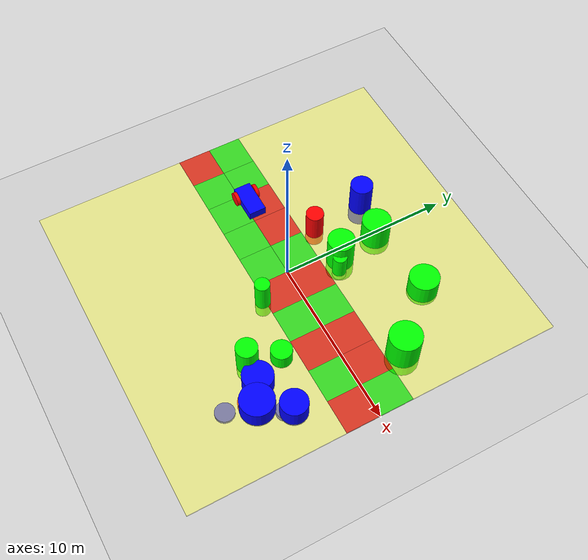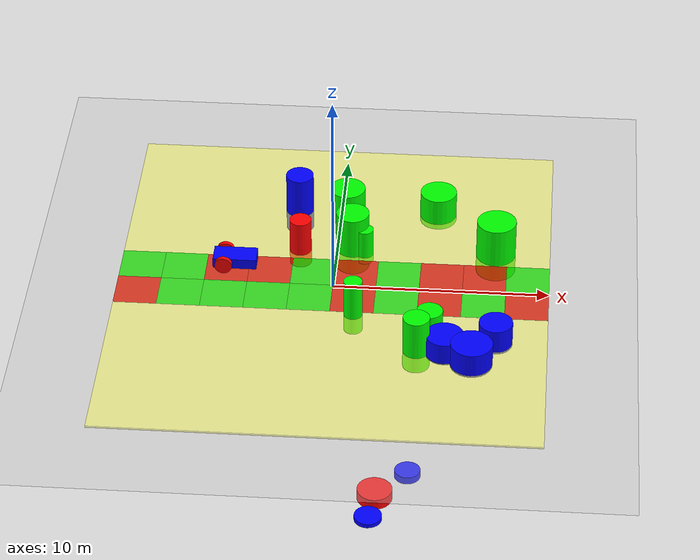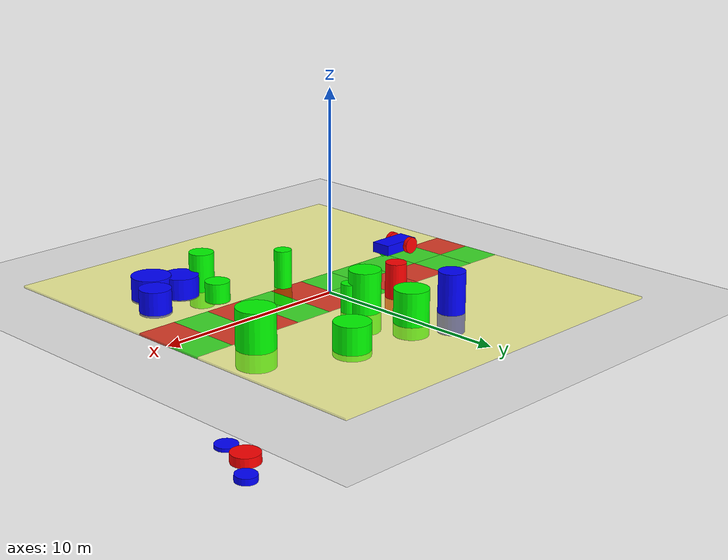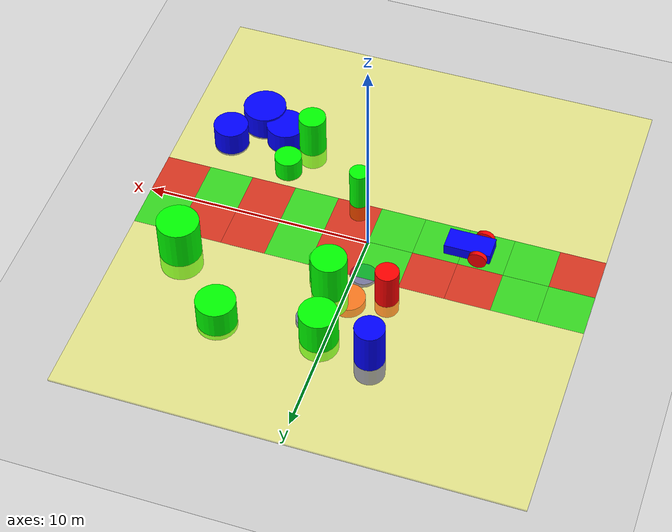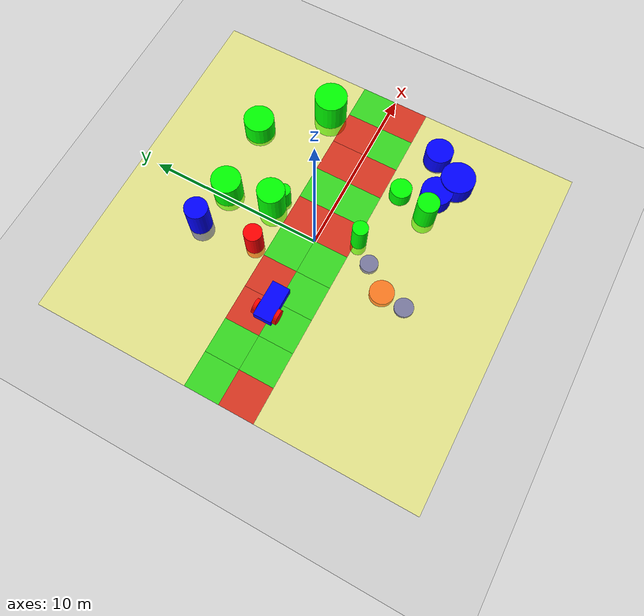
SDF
<?xml version="1.0" ?>
<sdf version='1.9'>
  <world name='car_world'>
    <physics name='1ms' type='ignored'>
      <max_step_size>1</max_step_size>
      <real_time_factor>1</real_time_factor>
      <real_time_update_rate>1000</real_time_update_rate>
    </physics>
    <plugin name='ignition::gazebo::systems::Physics' filename='libignition-gazebo-physics-system.so'/>
    <plugin name='ignition::gazebo::systems::UserCommands' filename='libignition-gazebo-user-commands-system.so'/>
    <plugin name='ignition::gazebo::systems::SceneBroadcaster' filename='libignition-gazebo-scene-broadcaster-system.so'/>
    <gravity>0 0 -9.8</gravity>
    <magnetic_field>6e-06 2.3e-05 -4.2e-05</magnetic_field>
    <atmosphere type='adiabatic'/>
    <scene>
      <ambient>0.4 0.4 0.4 1</ambient>
      <background>0.7 0.7 0.7 1</background>
      <shadows>true</shadows>
    </scene>
    <model name='ground_plane'>
      <static>true</static>
      <link name='link'>
        <collision name='collision'>
          <geometry>
            <plane>
              <normal>0 0 1</normal>
              <size>1 1</size>
            </plane>
          </geometry>
          <surface>
            <friction>
              <ode/>
            </friction>
            <bounce/>
            <contact/>
          </surface>
        </collision>
        <visual name='visual'>
          <geometry>
            <plane>
              <normal>0 0 1</normal>
              <size>100 100</size>
            </plane>
          </geometry>
          <material>
            <ambient>0.8 0.8 0.8 1</ambient>
            <diffuse>0.8 0.8 0.8 1</diffuse>
            <specular>0.8 0.8 0.8 1</specular>
          </material>
        </visual>
        <pose>0 0 0 0 -0 0</pose>
        <inertial>
          <pose>0 0 0 0 -0 0</pose>
          <mass>1</mass>
          <inertia>
            <ixx>1</ixx>
            <ixy>0</ixy>
            <ixz>0</ixz>
            <iyy>1</iyy>
            <iyz>0</iyz>
            <izz>1</izz>
          </inertia>
        </inertial>
        <enable_wind>false</enable_wind>
      </link>
      <pose>0 0 0 0 -0 0</pose>
      <self_collide>false</self_collide>
    </model>
    <model name='plank_left'>
      <pose>2e-06 6.50002 0.016227 0.000139 1.8e-05 0</pose>
      <link name='link_1'>
        <pose>0 0 0 0 -0 0</pose>
        <inertial>
          <mass>54.000100000000003</mass>
          <inertia>
            <ixx>364.54599999999999</ixx>
            <ixy>0</ixy>
            <ixz>0</ixz>
            <iyy>1800.0599999999999</iyy>
            <iyz>0</iyz>
            <izz>2164.5100000000002</izz>
          </inertia>
          <pose>0 0 0 0 -0 0</pose>
        </inertial>
        <visual name='visual'>
          <geometry>
            <box>
              <size>20 9 0.1</size>
            </box>
          </geometry>
          <material>
            <ambient>1 1 0.3 0.5</ambient>
            <diffuse>1 1 0.3 0.5</diffuse>
            <specular>1 1 0.3 0.5</specular>
          </material>
        </visual>
        <collision name='collision'>
          <geometry>
            <box>
              <size>20 9 0.1</size>
            </box>
          </geometry>
          <surface>
            <friction>
              <ode>
                <mu>1</mu>
                <mu2>1</mu2>
              </ode>
            </friction>
            <bounce/>
            <contact/>
          </surface>
        </collision>
        <enable_wind>false</enable_wind>
      </link>
      <static>false</static>
      <allow_auto_disable>true</allow_auto_disable>
      <self_collide>false</self_collide>
    </model>
    <model name='plank_right'>
      <pose>0 -6.50082 0.016562 -8.7e-05 4.7e-05 -6e-06</pose>
      <link name='link_1'>
        <pose>0 0 0 0 -0 0</pose>
        <inertial>
          <mass>54.000100000000003</mass>
          <inertia>
            <ixx>364.54599999999999</ixx>
            <ixy>0</ixy>
            <ixz>0</ixz>
            <iyy>1800.0599999999999</iyy>
            <iyz>0</iyz>
            <izz>2164.5100000000002</izz>
          </inertia>
          <pose>0 0 0 0 -0 0</pose>
        </inertial>
        <visual name='visual'>
          <geometry>
            <box>
              <size>20 9 0.1</size>
            </box>
          </geometry>
          <material>
            <ambient>1 1 0.3 0.5</ambient>
            <diffuse>1 1 0.3 0.5</diffuse>
            <specular>1 1 0.3 0.5</specular>
          </material>
        </visual>
        <collision name='collision'>
          <geometry>
            <box>
              <size>20 9 0.1</size>
            </box>
          </geometry>
          <surface>
            <friction>
              <ode>
                <mu>1</mu>
                <mu2>1</mu2>
              </ode>
            </friction>
            <bounce/>
            <contact/>
          </surface>
        </collision>
        <enable_wind>false</enable_wind>
      </link>
      <static>false</static>
      <allow_auto_disable>true</allow_auto_disable>
      <self_collide>false</self_collide>
    </model>
    <model name='Blauer_Blitz' canonical_link='chassis'>
      <pose>-5.00011 -0 1 -0.000245 0.000738 -1e-05</pose>
      <link name='chassis'>
        <pose>0.5 0 0.4 0 -0 0</pose>
        <inertial>
          <mass>1.14395</mass>
          <inertia>
            <ixx>0.126164</ixx>
            <ixy>0</ixy>
            <ixz>0</ixz>
            <iyy>0.41651899999999997</iyy>
            <iyz>0</iyz>
            <izz>0.481014</izz>
          </inertia>
          <pose>0 0 0 0 -0 0</pose>
        </inertial>
        <visual name='visual'>
          <geometry>
            <box>
              <size>2 1 0.5</size>
            </box>
          </geometry>
          <material>
            <ambient>0 0 1 1</ambient>
            <diffuse>0 0 1 1</diffuse>
            <specular>0 0 1 1</specular>
          </material>
        </visual>
        <collision name='collision'>
          <geometry>
            <box>
              <size>2 1 0.5</size>
            </box>
          </geometry>
          <surface>
            <friction>
              <ode/>
            </friction>
            <bounce/>
            <contact/>
          </surface>
        </collision>
        <enable_wind>false</enable_wind>
      </link>
      <link name='left_wheel'>
        <pose>-0 0.6 0.4 -1.5707 -0 -0</pose>
        <inertial>
          <mass>2</mass>
          <inertia>
            <ixx>0.14583299999999999</ixx>
            <ixy>0</ixy>
            <ixz>0</ixz>
            <iyy>0.14583299999999999</iyy>
            <iyz>0</iyz>
            <izz>0.125</izz>
          </inertia>
          <pose>0 0 0 0 -0 0</pose>
        </inertial>
        <visual name='visual'>
          <geometry>
            <cylinder>
              <radius>0.40000000000000002</radius>
              <length>0.20000000000000001</length>
            </cylinder>
          </geometry>
          <material>
            <ambient>1 0 0 1</ambient>
            <diffuse>1 0 0 1</diffuse>
            <specular>1 0 0 1</specular>
          </material>
        </visual>
        <collision name='collision'>
          <geometry>
            <cylinder>
              <radius>0.40000000000000002</radius>
              <length>0.20000000000000001</length>
            </cylinder>
          </geometry>
          <surface>
            <friction>
              <ode/>
            </friction>
            <bounce/>
            <contact/>
          </surface>
        </collision>
        <enable_wind>false</enable_wind>
      </link>
      <link name='right_wheel'>
        <pose>-0 -0.6 0.4 -1.5707 -0 -0</pose>
        <inertial>
          <mass>1</mass>
          <inertia>
            <ixx>0.14583299999999999</ixx>
            <ixy>0</ixy>
            <ixz>0</ixz>
            <iyy>0.14583299999999999</iyy>
            <iyz>0</iyz>
            <izz>0.125</izz>
          </inertia>
          <pose>0 0 0 0 -0 0</pose>
        </inertial>
        <visual name='visual'>
          <geometry>
            <cylinder>
              <radius>0.40000000000000002</radius>
              <length>0.20000000000000001</length>
            </cylinder>
          </geometry>
          <material>
            <ambient>1 0 0 1</ambient>
            <diffuse>1 0 0 1</diffuse>
            <specular>1 0 0 1</specular>
          </material>
        </visual>
        <collision name='collision'>
          <geometry>
            <cylinder>
              <radius>0.40000000000000002</radius>
              <length>0.20000000000000001</length>
            </cylinder>
          </geometry>
          <surface>
            <friction>
              <ode/>
            </friction>
            <bounce/>
            <contact/>
          </surface>
        </collision>
        <enable_wind>false</enable_wind>
      </link>
      <frame name='caster_frame' attached_to='chassis'>
        <pose>0.8 0 -0.2 0 0 0</pose>
      </frame>
      <link name='caster'>
        <pose>1.3 0 0.2 0.000245 -0.000738 9e-06</pose>
        <inertial>
          <mass>1</mass>
          <inertia>
            <ixx>0.10000000000000001</ixx>
            <ixy>0</ixy>
            <ixz>0</ixz>
            <iyy>0.10000000000000001</iyy>
            <iyz>0</iyz>
            <izz>0.10000000000000001</izz>
          </inertia>
          <pose>0 0 0 0 -0 0</pose>
        </inertial>
        <visual name='visual'>
          <geometry>
            <sphere>
              <radius>0.20000000000000001</radius>
            </sphere>
          </geometry>
          <material>
            <ambient>0 1 0 1</ambient>
            <diffuse>0 1 0 1</diffuse>
            <specular>0 1 0 1</specular>
          </material>
        </visual>
        <collision name='collision'>
          <geometry>
            <sphere>
              <radius>0.20000000000000001</radius>
            </sphere>
          </geometry>
          <surface>
            <friction>
              <ode/>
            </friction>
            <bounce/>
            <contact/>
          </surface>
        </collision>
        <enable_wind>false</enable_wind>
      </link>
      <joint name='left_wheel_joint' type='revolute'>
        <pose>0 0 0 0 -0 0</pose>
        <parent>chassis</parent>
        <child>left_wheel</child>
        <axis>
          <xyz>0 9.6e-05 1</xyz>
          <limit>
            <lower>-1.7976900000000001e+308</lower>
            <upper>1.7976900000000001e+308</upper>
            <effort>inf</effort>
            <velocity>inf</velocity>
            <stiffness>100000000</stiffness>
            <dissipation>1</dissipation>
          </limit>
          <dynamics>
            <spring_reference>0</spring_reference>
            <spring_stiffness>0</spring_stiffness>
            <damping>0</damping>
            <friction>0</friction>
          </dynamics>
        </axis>
      </joint>
      <joint name='right_wheel_joint' type='revolute'>
        <pose>0 0 0 0 -0 0</pose>
        <parent>chassis</parent>
        <child>right_wheel</child>
        <axis>
          <xyz>0 9.6e-05 1</xyz>
          <limit>
            <lower>-1.7976900000000001e+308</lower>
            <upper>1.7976900000000001e+308</upper>
            <effort>inf</effort>
            <velocity>inf</velocity>
            <stiffness>100000000</stiffness>
            <dissipation>1</dissipation>
          </limit>
          <dynamics>
            <spring_reference>0</spring_reference>
            <spring_stiffness>0</spring_stiffness>
            <damping>0</damping>
            <friction>0</friction>
          </dynamics>
        </axis>
      </joint>
      <joint name='caster_wheel' type='ball'>
        <parent>chassis</parent>
        <child>caster</child>
        <pose>0 0 0 0 -0 0</pose>
      </joint>
      <plugin name='ignition::gazebo::systems::DiffDrive' filename='ignition-gazebo-diff-drive-system'>
        <left_joint>left_wheel_joint</left_joint>
        <right_joint>right_wheel_joint</right_joint>
        <wheel_separation>1.2</wheel_separation>
        <wheel_radius>0.4</wheel_radius>
        <odom_publish_frequency>1</odom_publish_frequency>
        <topic>cmd_vel</topic>
      </plugin>
      <static>false</static>
      <self_collide>false</self_collide>
    </model>
    <model name='cyl_0'>
      <pose>4.60002 6.01996 0.584421 8.3e-05 6.1e-05 2.2e-05</pose>
      <link name='cylinder_link'>
        <inertial>
          <inertia>
            <ixx>0.14580000000000001</ixx>
            <ixy>0</ixy>
            <ixz>0</ixz>
            <iyy>0.14580000000000001</iyy>
            <iyz>0</iyz>
            <izz>0.125</izz>
          </inertia>
          <mass>1</mass>
          <pose>0 0 0 0 -0 0</pose>
        </inertial>
        <collision name='cylinder_collision'>
          <geometry>
            <cylinder>
              <radius>0.85999999999999999</radius>
              <length>1.5700000000000001</length>
            </cylinder>
          </geometry>
          <surface>
            <friction>
              <ode/>
            </friction>
            <bounce/>
            <contact/>
          </surface>
        </collision>
        <visual name='cylinder_visual'>
          <geometry>
            <cylinder>
              <radius>0.85999999999999999</radius>
              <length>1.5700000000000001</length>
            </cylinder>
          </geometry>
          <material>
            <ambient>0 1 0 1</ambient>
            <diffuse>0 1 0 1</diffuse>
            <specular>0 1 0 1</specular>
          </material>
        </visual>
        <pose>0 0 0 0 -0 0</pose>
        <enable_wind>false</enable_wind>
      </link>
      <static>false</static>
      <self_collide>false</self_collide>
    </model>
    <model name='cyl_1'>
      <pose>4.63079 -2.87058 0.535152 -0.000482 0.001892 0.000149</pose>
      <link name='cylinder_link'>
        <inertial>
          <inertia>
            <ixx>0.14580000000000001</ixx>
            <ixy>0</ixy>
            <ixz>0</ixz>
            <iyy>0.14580000000000001</iyy>
            <iyz>0</iyz>
            <izz>0.125</izz>
          </inertia>
          <mass>1</mass>
          <pose>0 0 0 0 -0 0</pose>
        </inertial>
        <collision name='cylinder_collision'>
          <geometry>
            <cylinder>
              <radius>0.59999999999999998</radius>
              <length>0.97999999999999998</length>
            </cylinder>
          </geometry>
          <surface>
            <friction>
              <ode/>
            </friction>
            <bounce/>
            <contact/>
          </surface>
        </collision>
        <visual name='cylinder_visual'>
          <geometry>
            <cylinder>
              <radius>0.59999999999999998</radius>
              <length>0.97999999999999998</length>
            </cylinder>
          </geometry>
          <material>
            <ambient>0 1 0 1</ambient>
            <diffuse>0 1 0 1</diffuse>
            <specular>0 1 0 1</specular>
          </material>
        </visual>
        <pose>0 0 0 0 -0 0</pose>
        <enable_wind>false</enable_wind>
      </link>
      <static>false</static>
      <self_collide>false</self_collide>
    </model>
    <model name='cyl_2'>
      <pose>2.24 -3.81 -9.23213 -0 0 0</pose>
      <link name='cylinder_link'>
        <inertial>
          <inertia>
            <ixx>0.14580000000000001</ixx>
            <ixy>0</ixy>
            <ixz>0</ixz>
            <iyy>0.14580000000000001</iyy>
            <iyz>0</iyz>
            <izz>0.125</izz>
          </inertia>
          <mass>1</mass>
          <pose>0 0 0 0 -0 0</pose>
        </inertial>
        <collision name='cylinder_collision'>
          <geometry>
            <cylinder>
              <radius>0.83999999999999997</radius>
              <length>0.56000000000000005</length>
            </cylinder>
          </geometry>
          <surface>
            <friction>
              <ode/>
            </friction>
            <bounce/>
            <contact/>
          </surface>
        </collision>
        <visual name='cylinder_visual'>
          <geometry>
            <cylinder>
              <radius>0.83999999999999997</radius>
              <length>0.56000000000000005</length>
            </cylinder>
          </geometry>
          <material>
            <ambient>1 0 0 1</ambient>
            <diffuse>1 0 0 1</diffuse>
            <specular>1 0 0 1</specular>
          </material>
        </visual>
        <pose>0 0 0 0 -0 0</pose>
        <enable_wind>false</enable_wind>
      </link>
      <static>false</static>
      <self_collide>false</self_collide>
    </model>
    <model name='cyl_3'>
      <pose>1.3115 2.60841 0.588737 0.000703 0.000568 -6.3e-05</pose>
      <link name='cylinder_link'>
        <inertial>
          <inertia>
            <ixx>0.14580000000000001</ixx>
            <ixy>0</ixy>
            <ixz>0</ixz>
            <iyy>0.14580000000000001</iyy>
            <iyz>0</iyz>
            <izz>0.125</izz>
          </inertia>
          <mass>1</mass>
          <pose>0 0 0 0 -0 0</pose>
        </inertial>
        <collision name='cylinder_collision'>
          <geometry>
            <cylinder>
              <radius>0.40000000000000002</radius>
              <length>1.74</length>
            </cylinder>
          </geometry>
          <surface>
            <friction>
              <ode/>
            </friction>
            <bounce/>
            <contact/>
          </surface>
        </collision>
        <visual name='cylinder_visual'>
          <geometry>
            <cylinder>
              <radius>0.40000000000000002</radius>
              <length>1.74</length>
            </cylinder>
          </geometry>
          <material>
            <ambient>0 1 0 1</ambient>
            <diffuse>0 1 0 1</diffuse>
            <specular>0 1 0 1</specular>
          </material>
        </visual>
        <pose>0 0 0 0 -0 0</pose>
        <enable_wind>false</enable_wind>
      </link>
      <static>false</static>
      <self_collide>false</self_collide>
    </model>
    <model name='cyl_4'>
      <pose>0.300024 5.55995 0.58481 8.7e-05 5.2e-05 1.6e-05</pose>
      <link name='cylinder_link'>
        <inertial>
          <inertia>
            <ixx>0.14580000000000001</ixx>
            <ixy>0</ixy>
            <ixz>0</ixz>
            <iyy>0.14580000000000001</iyy>
            <iyz>0</iyz>
            <izz>0.125</izz>
          </inertia>
          <mass>1</mass>
          <pose>0 0 0 0 -0 0</pose>
        </inertial>
        <collision name='cylinder_collision'>
          <geometry>
            <cylinder>
              <radius>0.82999999999999996</radius>
              <length>2.23</length>
            </cylinder>
          </geometry>
          <surface>
            <friction>
              <ode/>
            </friction>
            <bounce/>
            <contact/>
          </surface>
        </collision>
        <visual name='cylinder_visual'>
          <geometry>
            <cylinder>
              <radius>0.82999999999999996</radius>
              <length>2.23</length>
            </cylinder>
          </geometry>
          <material>
            <ambient>0 1 0 1</ambient>
            <diffuse>0 1 0 1</diffuse>
            <specular>0 1 0 1</specular>
          </material>
        </visual>
        <pose>0 0 0 0 -0 0</pose>
        <enable_wind>false</enable_wind>
      </link>
      <static>false</static>
      <self_collide>false</self_collide>
    </model>
    <model name='cyl_5'>
      <pose>-1.72002 2.70995 0.587508 0.000106 -8.8e-05 -2.6e-05</pose>
      <link name='cylinder_link'>
        <inertial>
          <inertia>
            <ixx>0.14580000000000001</ixx>
            <ixy>0</ixy>
            <ixz>0</ixz>
            <iyy>0.14580000000000001</iyy>
            <iyz>0</iyz>
            <izz>0.125</izz>
          </inertia>
          <mass>1</mass>
          <pose>0 0 0 0 -0 0</pose>
        </inertial>
        <collision name='cylinder_collision'>
          <geometry>
            <cylinder>
              <radius>0.51000000000000001</radius>
              <length>2.3900000000000001</length>
            </cylinder>
          </geometry>
          <surface>
            <friction>
              <ode/>
            </friction>
            <bounce/>
            <contact/>
          </surface>
        </collision>
        <visual name='cylinder_visual'>
          <geometry>
            <cylinder>
              <radius>0.51000000000000001</radius>
              <length>2.3900000000000001</length>
            </cylinder>
          </geometry>
          <material>
            <ambient>1 0 0 1</ambient>
            <diffuse>1 0 0 1</diffuse>
            <specular>1 0 0 1</specular>
          </material>
        </visual>
        <pose>0 0 0 0 -0 0</pose>
        <enable_wind>false</enable_wind>
      </link>
      <static>false</static>
      <self_collide>false</self_collide>
    </model>
    <model name='cyl_6'>
      <pose>3.69648 -2.15263 -9.28027 -0.025013 -0.010582 -0.008154</pose>
      <link name='cylinder_link'>
        <inertial>
          <inertia>
            <ixx>0.14580000000000001</ixx>
            <ixy>0</ixy>
            <ixz>0</ixz>
            <iyy>0.14580000000000001</iyy>
            <iyz>0</iyz>
            <izz>0.125</izz>
          </inertia>
          <mass>1</mass>
          <pose>0 0 0 0 -0 0</pose>
        </inertial>
        <collision name='cylinder_collision'>
          <geometry>
            <cylinder>
              <radius>0.62</radius>
              <length>0.38</length>
            </cylinder>
          </geometry>
          <surface>
            <friction>
              <ode/>
            </friction>
            <bounce/>
            <contact/>
          </surface>
        </collision>
        <visual name='cylinder_visual'>
          <geometry>
            <cylinder>
              <radius>0.62</radius>
              <length>0.38</length>
            </cylinder>
          </geometry>
          <material>
            <ambient>0 0 1 1</ambient>
            <diffuse>0 0 1 1</diffuse>
            <specular>0 0 1 1</specular>
          </material>
        </visual>
        <pose>0 0 0 0 -0 0</pose>
        <enable_wind>false</enable_wind>
      </link>
      <static>false</static>
      <self_collide>false</self_collide>
    </model>
    <model name='cyl_7'>
      <pose>2.04 -5.52 -9.23014 0 -0 0</pose>
      <link name='cylinder_link'>
        <inertial>
          <inertia>
            <ixx>0.14580000000000001</ixx>
            <ixy>0</ixy>
            <ixz>0</ixz>
            <iyy>0.14580000000000001</iyy>
            <iyz>0</iyz>
            <izz>0.125</izz>
          </inertia>
          <mass>1</mass>
          <pose>0 0 0 0 -0 0</pose>
        </inertial>
        <collision name='cylinder_collision'>
          <geometry>
            <cylinder>
              <radius>0.66000000000000003</radius>
              <length>0.22</length>
            </cylinder>
          </geometry>
          <surface>
            <friction>
              <ode/>
            </friction>
            <bounce/>
            <contact/>
          </surface>
        </collision>
        <visual name='cylinder_visual'>
          <geometry>
            <cylinder>
              <radius>0.66000000000000003</radius>
              <length>0.22</length>
            </cylinder>
          </geometry>
          <material>
            <ambient>0 0 1 1</ambient>
            <diffuse>0 0 1 1</diffuse>
            <specular>0 0 1 1</specular>
          </material>
        </visual>
        <pose>0 0 0 0 -0 0</pose>
        <enable_wind>false</enable_wind>
      </link>
      <static>false</static>
      <self_collide>false</self_collide>
    </model>
    <model name='cyl_8'>
      <pose>7.45004 2.9506 0.583882 -0.001263 8.5e-05 2.1e-05</pose>
      <link name='cylinder_link'>
        <inertial>
          <inertia>
            <ixx>0.14580000000000001</ixx>
            <ixy>0</ixy>
            <ixz>0</ixz>
            <iyy>0.14580000000000001</iyy>
            <iyz>0</iyz>
            <izz>0.125</izz>
          </inertia>
          <mass>1</mass>
          <pose>0 0 0 0 -0 0</pose>
        </inertial>
        <collision name='cylinder_collision'>
          <geometry>
            <cylinder>
              <radius>0.92000000000000004</radius>
              <length>2.7599999999999998</length>
            </cylinder>
          </geometry>
          <surface>
            <friction>
              <ode/>
            </friction>
            <bounce/>
            <contact/>
          </surface>
        </collision>
        <visual name='cylinder_visual'>
          <geometry>
            <cylinder>
              <radius>0.92000000000000004</radius>
              <length>2.7599999999999998</length>
            </cylinder>
          </geometry>
          <material>
            <ambient>0 1 0 1</ambient>
            <diffuse>0 1 0 1</diffuse>
            <specular>0 1 0 1</specular>
          </material>
        </visual>
        <pose>0 0 0 0 -0 0</pose>
        <enable_wind>false</enable_wind>
      </link>
      <static>false</static>
      <self_collide>false</self_collide>
    </model>
    <model name='cyl_9'>
      <pose>6.61686 -5.35217 0.57986 0.000467 0.001269 5.6e-05</pose>
      <link name='cylinder_link'>
        <inertial>
          <inertia>
            <ixx>0.14580000000000001</ixx>
            <ixy>0</ixy>
            <ixz>0</ixz>
            <iyy>0.14580000000000001</iyy>
            <iyz>0</iyz>
            <izz>0.125</izz>
          </inertia>
          <mass>1</mass>
          <pose>0 0 0 0 -0 0</pose>
        </inertial>
        <collision name='cylinder_collision'>
          <geometry>
            <cylinder>
              <radius>0.95999999999999996</radius>
              <length>1.1799999999999999</length>
            </cylinder>
          </geometry>
          <surface>
            <friction>
              <ode/>
            </friction>
            <bounce/>
            <contact/>
          </surface>
        </collision>
        <visual name='cylinder_visual'>
          <geometry>
            <cylinder>
              <radius>0.95999999999999996</radius>
              <length>1.1799999999999999</length>
            </cylinder>
          </geometry>
          <material>
            <ambient>0 0 1 1</ambient>
            <diffuse>0 0 1 1</diffuse>
            <specular>0 0 1 1</specular>
          </material>
        </visual>
        <pose>0 0 0 0 -0 0</pose>
        <enable_wind>false</enable_wind>
      </link>
      <static>false</static>
      <self_collide>false</self_collide>
    </model>
    <model name='cyl_10'>
      <pose>-2.02001 5.94996 0.586806 8e-05 -3.4e-05 -3e-06</pose>
      <link name='cylinder_link'>
        <inertial>
          <inertia>
            <ixx>0.14580000000000001</ixx>
            <ixy>0</ixy>
            <ixz>0</ixz>
            <iyy>0.14580000000000001</iyy>
            <iyz>0</iyz>
            <izz>0.125</izz>
          </inertia>
          <mass>1</mass>
          <pose>0 0 0 0 -0 0</pose>
        </inertial>
        <collision name='cylinder_collision'>
          <geometry>
            <cylinder>
              <radius>0.65000000000000002</radius>
              <length>2.96</length>
            </cylinder>
          </geometry>
          <surface>
            <friction>
              <ode/>
            </friction>
            <bounce/>
            <contact/>
          </surface>
        </collision>
        <visual name='cylinder_visual'>
          <geometry>
            <cylinder>
              <radius>0.65000000000000002</radius>
              <length>2.96</length>
            </cylinder>
          </geometry>
          <material>
            <ambient>0 0 1 1</ambient>
            <diffuse>0 0 1 1</diffuse>
            <specular>0 0 1 1</specular>
          </material>
        </visual>
        <pose>0 0 0 0 -0 0</pose>
        <enable_wind>false</enable_wind>
      </link>
      <static>false</static>
      <self_collide>false</self_collide>
    </model>
    <model name='cyl_11'>
      <pose>5.38085 -4.66839 0.553964 -0.000818 -0.000598 9.3e-05</pose>
      <link name='cylinder_link'>
        <inertial>
          <inertia>
            <ixx>0.14580000000000001</ixx>
            <ixy>0</ixy>
            <ixz>0</ixz>
            <iyy>0.14580000000000001</iyy>
            <iyz>0</iyz>
            <izz>0.125</izz>
          </inertia>
          <mass>1</mass>
          <pose>0 0 0 0 -0 0</pose>
        </inertial>
        <collision name='cylinder_collision'>
          <geometry>
            <cylinder>
              <radius>0.87</radius>
              <length>1.0600000000000001</length>
            </cylinder>
          </geometry>
          <surface>
            <friction>
              <ode/>
            </friction>
            <bounce/>
            <contact/>
          </surface>
        </collision>
        <visual name='cylinder_visual'>
          <geometry>
            <cylinder>
              <radius>0.87</radius>
              <length>1.0600000000000001</length>
            </cylinder>
          </geometry>
          <material>
            <ambient>0 0 1 1</ambient>
            <diffuse>0 0 1 1</diffuse>
            <specular>0 0 1 1</specular>
          </material>
        </visual>
        <pose>0 0 0 0 -0 0</pose>
        <enable_wind>false</enable_wind>
      </link>
      <static>false</static>
      <self_collide>false</self_collide>
    </model>
    <model name='cyl_12'>
      <pose>1.09011 -2.13026 0.572621 1.4e-05 0.000411 0.000235</pose>
      <link name='cylinder_link'>
        <inertial>
          <inertia>
            <ixx>0.14580000000000001</ixx>
            <ixy>0</ixy>
            <ixz>0</ixz>
            <iyy>0.14580000000000001</iyy>
            <iyz>0</iyz>
            <izz>0.125</izz>
          </inertia>
          <mass>1</mass>
          <pose>0 0 0 0 -0 0</pose>
        </inertial>
        <collision name='cylinder_collision'>
          <geometry>
            <cylinder>
              <radius>0.42999999999999999</radius>
              <length>2.7200000000000002</length>
            </cylinder>
          </geometry>
          <surface>
            <friction>
              <ode/>
            </friction>
            <bounce/>
            <contact/>
          </surface>
        </collision>
        <visual name='cylinder_visual'>
          <geometry>
            <cylinder>
              <radius>0.42999999999999999</radius>
              <length>2.7200000000000002</length>
            </cylinder>
          </geometry>
          <material>
            <ambient>0 1 0 1</ambient>
            <diffuse>0 1 0 1</diffuse>
            <specular>0 1 0 1</specular>
          </material>
        </visual>
        <pose>0 0 0 0 -0 0</pose>
        <enable_wind>false</enable_wind>
      </link>
      <static>false</static>
      <self_collide>false</self_collide>
    </model>
    <model name='cyl_13'>
      <pose>7.65005 -3.76079 0.5849 -0.000157 5.7e-05 3e-06</pose>
      <link name='cylinder_link'>
        <inertial>
          <inertia>
            <ixx>0.14580000000000001</ixx>
            <ixy>0</ixy>
            <ixz>0</ixz>
            <iyy>0.14580000000000001</iyy>
            <iyz>0</iyz>
            <izz>0.125</izz>
          </inertia>
          <mass>1</mass>
          <pose>0 0 0 0 -0 0</pose>
        </inertial>
        <collision name='cylinder_collision'>
          <geometry>
            <cylinder>
              <radius>0.77000000000000002</radius>
              <length>1.22</length>
            </cylinder>
          </geometry>
          <surface>
            <friction>
              <ode/>
            </friction>
            <bounce/>
            <contact/>
          </surface>
        </collision>
        <visual name='cylinder_visual'>
          <geometry>
            <cylinder>
              <radius>0.77000000000000002</radius>
              <length>1.22</length>
            </cylinder>
          </geometry>
          <material>
            <ambient>0 0 1 1</ambient>
            <diffuse>0 0 1 1</diffuse>
            <specular>0 0 1 1</specular>
          </material>
        </visual>
        <pose>0 0 0 0 -0 0</pose>
        <enable_wind>false</enable_wind>
      </link>
      <static>false</static>
      <self_collide>false</self_collide>
    </model>
    <model name='cyl_14'>
      <pose>0.712593 3.00327 0.584965 0.000316 0.000444 6.8e-05</pose>
      <link name='cylinder_link'>
        <inertial>
          <inertia>
            <ixx>0.14580000000000001</ixx>
            <ixy>0</ixy>
            <ixz>0</ixz>
            <iyy>0.14580000000000001</iyy>
            <iyz>0</iyz>
            <izz>0.125</izz>
          </inertia>
          <mass>1</mass>
          <pose>0 0 0 0 -0 0</pose>
        </inertial>
        <collision name='cylinder_collision'>
          <geometry>
            <cylinder>
              <radius>0.77000000000000002</radius>
              <length>2.9900000000000002</length>
            </cylinder>
          </geometry>
          <surface>
            <friction>
              <ode/>
            </friction>
            <bounce/>
            <contact/>
          </surface>
        </collision>
        <visual name='cylinder_visual'>
          <geometry>
            <cylinder>
              <radius>0.77000000000000002</radius>
              <length>2.9900000000000002</length>
            </cylinder>
          </geometry>
          <material>
            <ambient>0 1 0 1</ambient>
            <diffuse>0 1 0 1</diffuse>
            <specular>0 1 0 1</specular>
          </material>
        </visual>
        <pose>0 0 0 0 -0 0</pose>
        <enable_wind>false</enable_wind>
      </link>
      <static>false</static>
      <self_collide>false</self_collide>
    </model>
    <model name='cyl_15'>
      <pose>4.10752 -4.62697 0.588208 0.001675 -0.002884 -0.001654</pose>
      <link name='cylinder_link'>
        <inertial>
          <inertia>
            <ixx>0.14580000000000001</ixx>
            <ixy>0</ixy>
            <ixz>0</ixz>
            <iyy>0.14580000000000001</iyy>
            <iyz>0</iyz>
            <izz>0.125</izz>
          </inertia>
          <mass>1</mass>
          <pose>0 0 0 0 -0 0</pose>
        </inertial>
        <collision name='cylinder_collision'>
          <geometry>
            <cylinder>
              <radius>0.60999999999999999</radius>
              <length>2.6800000000000002</length>
            </cylinder>
          </geometry>
          <surface>
            <friction>
              <ode/>
            </friction>
            <bounce/>
            <contact/>
          </surface>
        </collision>
        <visual name='cylinder_visual'>
          <geometry>
            <cylinder>
              <radius>0.60999999999999999</radius>
              <length>2.6800000000000002</length>
            </cylinder>
          </geometry>
          <material>
            <ambient>0 1 0 1</ambient>
            <diffuse>0 1 0 1</diffuse>
            <specular>0 1 0 1</specular>
          </material>
        </visual>
        <pose>0 0 0 0 -0 0</pose>
        <enable_wind>false</enable_wind>
      </link>
      <static>false</static>
      <self_collide>false</self_collide>
    </model>
    <model name='tile_-5_-1'>
      <pose>-9 -0.999999 0.017402 1e-05 1e-06 0</pose>
      <link name='tile_-5_-1'>
        <pose>0 0 0 0 -0 0</pose>
        <inertial>
          <mass>260.13400000000001</mass>
          <inertia>
            <ixx>86.820899999999995</ixx>
            <ixy>0</ixy>
            <ixz>0</ixz>
            <iyy>86.821299999999994</iyy>
            <iyz>0</iyz>
            <izz>173.423</izz>
          </inertia>
          <pose>0 0 0 0 -0 0</pose>
        </inertial>
        <visual name='visual'>
          <geometry>
            <box>
              <size>2 2 0.1</size>
            </box>
          </geometry>
          <material>
            <ambient>0.9 0.1 0 0.8</ambient>
            <diffuse>0.9 0.1 0 0.8</diffuse>
            <specular>0.9 0.1 0 0.8</specular>
          </material>
        </visual>
        <collision name='collision'>
          <geometry>
            <box>
              <size>2 2 0.1</size>
            </box>
          </geometry>
          <surface>
            <friction>
              <ode>
                <mu>28.999999999999996</mu>
                <mu2>41</mu2>
              </ode>
            </friction>
            <contact/>
            <bounce/>
          </surface>
        </collision>
        <enable_wind>false</enable_wind>
      </link>
      <static>false</static>
      <self_collide>false</self_collide>
    </model>
    <model name='tile_-5_0'>
      <pose>-9 1 0.017404 1e-05 -2e-06 -0</pose>
      <link name='tile_-5_0'>
        <pose>0 0 0 0 -0 0</pose>
        <inertial>
          <mass>260.13400000000001</mass>
          <inertia>
            <ixx>86.820899999999995</ixx>
            <ixy>0</ixy>
            <ixz>0</ixz>
            <iyy>86.821299999999994</iyy>
            <iyz>0</iyz>
            <izz>173.423</izz>
          </inertia>
          <pose>0 0 0 0 -0 0</pose>
        </inertial>
        <visual name='visual'>
          <geometry>
            <box>
              <size>2 2 0.1</size>
            </box>
          </geometry>
          <material>
            <ambient>0.1 0.9 0 0.8</ambient>
            <diffuse>0.1 0.9 0 0.8</diffuse>
            <specular>0.1 0.9 0 0.8</specular>
          </material>
        </visual>
        <collision name='collision'>
          <geometry>
            <box>
              <size>2 2 0.1</size>
            </box>
          </geometry>
          <surface>
            <friction>
              <ode>
                <mu>78</mu>
                <mu2>32</mu2>
              </ode>
            </friction>
            <contact/>
            <bounce/>
          </surface>
        </collision>
        <enable_wind>false</enable_wind>
      </link>
      <static>false</static>
      <self_collide>false</self_collide>
    </model>
    <model name='tile_-4_-1'>
      <pose>-7 -1 0.017402 1e-05 1e-06 -0</pose>
      <link name='tile_-4_-1'>
        <pose>0 0 0 0 -0 0</pose>
        <inertial>
          <mass>260.13400000000001</mass>
          <inertia>
            <ixx>86.820899999999995</ixx>
            <ixy>0</ixy>
            <ixz>0</ixz>
            <iyy>86.821299999999994</iyy>
            <iyz>0</iyz>
            <izz>173.423</izz>
          </inertia>
          <pose>0 0 0 0 -0 0</pose>
        </inertial>
        <visual name='visual'>
          <geometry>
            <box>
              <size>2 2 0.1</size>
            </box>
          </geometry>
          <material>
            <ambient>0.1 0.9 0 0.8</ambient>
            <diffuse>0.1 0.9 0 0.8</diffuse>
            <specular>0.1 0.9 0 0.8</specular>
          </material>
        </visual>
        <collision name='collision'>
          <geometry>
            <box>
              <size>2 2 0.1</size>
            </box>
          </geometry>
          <surface>
            <friction>
              <ode>
                <mu>50</mu>
                <mu2>95</mu2>
              </ode>
            </friction>
            <contact/>
            <bounce/>
          </surface>
        </collision>
        <enable_wind>false</enable_wind>
      </link>
      <static>false</static>
      <self_collide>false</self_collide>
    </model>
    <model name='tile_-4_0'>
      <pose>-7 1 0.017403 1e-05 -2e-06 -0</pose>
      <link name='tile_-4_0'>
        <pose>0 0 0 0 -0 0</pose>
        <inertial>
          <mass>260.13400000000001</mass>
          <inertia>
            <ixx>86.820899999999995</ixx>
            <ixy>0</ixy>
            <ixz>0</ixz>
            <iyy>86.821299999999994</iyy>
            <iyz>0</iyz>
            <izz>173.423</izz>
          </inertia>
          <pose>0 0 0 0 -0 0</pose>
        </inertial>
        <visual name='visual'>
          <geometry>
            <box>
              <size>2 2 0.1</size>
            </box>
          </geometry>
          <material>
            <ambient>0.1 0.9 0 0.8</ambient>
            <diffuse>0.1 0.9 0 0.8</diffuse>
            <specular>0.1 0.9 0 0.8</specular>
          </material>
        </visual>
        <collision name='collision'>
          <geometry>
            <box>
              <size>2 2 0.1</size>
            </box>
          </geometry>
          <surface>
            <friction>
              <ode>
                <mu>71</mu>
                <mu2>86</mu2>
              </ode>
            </friction>
            <contact/>
            <bounce/>
          </surface>
        </collision>
        <enable_wind>false</enable_wind>
      </link>
      <static>false</static>
      <self_collide>false</self_collide>
    </model>
    <model name='tile_-3_-1'>
      <pose>-5 -0.999999 0.017404 1e-05 -2e-06 -0</pose>
      <link name='tile_-3_-1'>
        <pose>0 0 0 0 -0 0</pose>
        <inertial>
          <mass>260.13400000000001</mass>
          <inertia>
            <ixx>86.820899999999995</ixx>
            <ixy>0</ixy>
            <ixz>0</ixz>
            <iyy>86.821299999999994</iyy>
            <iyz>0</iyz>
            <izz>173.423</izz>
          </inertia>
          <pose>0 0 0 0 -0 0</pose>
        </inertial>
        <visual name='visual'>
          <geometry>
            <box>
              <size>2 2 0.1</size>
            </box>
          </geometry>
          <material>
            <ambient>0.1 0.9 0 0.8</ambient>
            <diffuse>0.1 0.9 0 0.8</diffuse>
            <specular>0.1 0.9 0 0.8</specular>
          </material>
        </visual>
        <collision name='collision'>
          <geometry>
            <box>
              <size>2 2 0.1</size>
            </box>
          </geometry>
          <surface>
            <friction>
              <ode>
                <mu>79</mu>
                <mu2>16</mu2>
              </ode>
            </friction>
            <contact/>
            <bounce/>
          </surface>
        </collision>
        <enable_wind>false</enable_wind>
      </link>
      <static>false</static>
      <self_collide>false</self_collide>
    </model>
    <model name='tile_-3_0'>
      <pose>-5 1 0.017403 1e-05 0 0</pose>
      <link name='tile_-3_0'>
        <pose>0 0 0 0 -0 0</pose>
        <inertial>
          <mass>260.13400000000001</mass>
          <inertia>
            <ixx>86.820899999999995</ixx>
            <ixy>0</ixy>
            <ixz>0</ixz>
            <iyy>86.821299999999994</iyy>
            <iyz>0</iyz>
            <izz>173.423</izz>
          </inertia>
          <pose>0 0 0 0 -0 0</pose>
        </inertial>
        <visual name='visual'>
          <geometry>
            <box>
              <size>2 2 0.1</size>
            </box>
          </geometry>
          <material>
            <ambient>0.9 0.1 0 0.8</ambient>
            <diffuse>0.9 0.1 0 0.8</diffuse>
            <specular>0.9 0.1 0 0.8</specular>
          </material>
        </visual>
        <collision name='collision'>
          <geometry>
            <box>
              <size>2 2 0.1</size>
            </box>
          </geometry>
          <surface>
            <friction>
              <ode>
                <mu>0</mu>
                <mu2>14.000000000000002</mu2>
              </ode>
            </friction>
            <contact/>
            <bounce/>
          </surface>
        </collision>
        <enable_wind>false</enable_wind>
      </link>
      <static>false</static>
      <self_collide>false</self_collide>
    </model>
    <model name='tile_-2_-1'>
      <pose>-3 -0.999999 0.017404 1e-05 -5e-06 -0</pose>
      <link name='tile_-2_-1'>
        <pose>0 0 0 0 -0 0</pose>
        <inertial>
          <mass>260.13400000000001</mass>
          <inertia>
            <ixx>86.820899999999995</ixx>
            <ixy>0</ixy>
            <ixz>0</ixz>
            <iyy>86.821299999999994</iyy>
            <iyz>0</iyz>
            <izz>173.423</izz>
          </inertia>
          <pose>0 0 0 0 -0 0</pose>
        </inertial>
        <visual name='visual'>
          <geometry>
            <box>
              <size>2 2 0.1</size>
            </box>
          </geometry>
          <material>
            <ambient>0.1 0.9 0 0.8</ambient>
            <diffuse>0.1 0.9 0 0.8</diffuse>
            <specular>0.1 0.9 0 0.8</specular>
          </material>
        </visual>
        <collision name='collision'>
          <geometry>
            <box>
              <size>2 2 0.1</size>
            </box>
          </geometry>
          <surface>
            <friction>
              <ode>
                <mu>95</mu>
                <mu2>61</mu2>
              </ode>
            </friction>
            <contact/>
            <bounce/>
          </surface>
        </collision>
        <enable_wind>false</enable_wind>
      </link>
      <static>false</static>
      <self_collide>false</self_collide>
    </model>
    <model name='tile_-2_0'>
      <pose>-3 1 0.017403 1e-05 -1e-06 0</pose>
      <link name='tile_-2_0'>
        <pose>0 0 0 0 -0 0</pose>
        <inertial>
          <mass>260.13400000000001</mass>
          <inertia>
            <ixx>86.820899999999995</ixx>
            <ixy>0</ixy>
            <ixz>0</ixz>
            <iyy>86.821299999999994</iyy>
            <iyz>0</iyz>
            <izz>173.423</izz>
          </inertia>
          <pose>0 0 0 0 -0 0</pose>
        </inertial>
        <visual name='visual'>
          <geometry>
            <box>
              <size>2 2 0.1</size>
            </box>
          </geometry>
          <material>
            <ambient>0.9 0.1 0 0.8</ambient>
            <diffuse>0.9 0.1 0 0.8</diffuse>
            <specular>0.9 0.1 0 0.8</specular>
          </material>
        </visual>
        <collision name='collision'>
          <geometry>
            <box>
              <size>2 2 0.1</size>
            </box>
          </geometry>
          <surface>
            <friction>
              <ode>
                <mu>44</mu>
                <mu2>88</mu2>
              </ode>
            </friction>
            <contact/>
            <bounce/>
          </surface>
        </collision>
        <enable_wind>false</enable_wind>
      </link>
      <static>false</static>
      <self_collide>false</self_collide>
    </model>
    <model name='tile_-1_-1'>
      <pose>-1 -0.999999 0.017402 1e-05 -2e-06 0</pose>
      <link name='tile_-1_-1'>
        <pose>0 0 0 0 -0 0</pose>
        <inertial>
          <mass>260.13400000000001</mass>
          <inertia>
            <ixx>86.820899999999995</ixx>
            <ixy>0</ixy>
            <ixz>0</ixz>
            <iyy>86.821299999999994</iyy>
            <iyz>0</iyz>
            <izz>173.423</izz>
          </inertia>
          <pose>0 0 0 0 -0 0</pose>
        </inertial>
        <visual name='visual'>
          <geometry>
            <box>
              <size>2 2 0.1</size>
            </box>
          </geometry>
          <material>
            <ambient>0.1 0.9 0 0.8</ambient>
            <diffuse>0.1 0.9 0 0.8</diffuse>
            <specular>0.1 0.9 0 0.8</specular>
          </material>
        </visual>
        <collision name='collision'>
          <geometry>
            <box>
              <size>2 2 0.1</size>
            </box>
          </geometry>
          <surface>
            <friction>
              <ode>
                <mu>70</mu>
                <mu2>67</mu2>
              </ode>
            </friction>
            <contact/>
            <bounce/>
          </surface>
        </collision>
        <enable_wind>false</enable_wind>
      </link>
      <static>false</static>
      <self_collide>false</self_collide>
    </model>
    <model name='tile_-1_0'>
      <pose>-1 1 0.017403 1e-05 -3e-06 0</pose>
      <link name='tile_-1_0'>
        <pose>0 0 0 0 -0 0</pose>
        <inertial>
          <mass>260.13400000000001</mass>
          <inertia>
            <ixx>86.820899999999995</ixx>
            <ixy>0</ixy>
            <ixz>0</ixz>
            <iyy>86.821299999999994</iyy>
            <iyz>0</iyz>
            <izz>173.423</izz>
          </inertia>
          <pose>0 0 0 0 -0 0</pose>
        </inertial>
        <visual name='visual'>
          <geometry>
            <box>
              <size>2 2 0.1</size>
            </box>
          </geometry>
          <material>
            <ambient>0.1 0.9 0 0.8</ambient>
            <diffuse>0.1 0.9 0 0.8</diffuse>
            <specular>0.1 0.9 0 0.8</specular>
          </material>
        </visual>
        <collision name='collision'>
          <geometry>
            <box>
              <size>2 2 0.1</size>
            </box>
          </geometry>
          <surface>
            <friction>
              <ode>
                <mu>73</mu>
                <mu2>81</mu2>
              </ode>
            </friction>
            <contact/>
            <bounce/>
          </surface>
        </collision>
        <enable_wind>false</enable_wind>
      </link>
      <static>false</static>
      <self_collide>false</self_collide>
    </model>
    <model name='tile_0_-1'>
      <pose>1 -0.999913 0.017406 5e-06 -0 4e-06</pose>
      <link name='tile_0_-1'>
        <pose>0 0 0 0 -0 0</pose>
        <inertial>
          <mass>260.13400000000001</mass>
          <inertia>
            <ixx>86.820899999999995</ixx>
            <ixy>0</ixy>
            <ixz>0</ixz>
            <iyy>86.821299999999994</iyy>
            <iyz>0</iyz>
            <izz>173.423</izz>
          </inertia>
          <pose>0 0 0 0 -0 0</pose>
        </inertial>
        <visual name='visual'>
          <geometry>
            <box>
              <size>2 2 0.1</size>
            </box>
          </geometry>
          <material>
            <ambient>0.9 0.1 0 0.8</ambient>
            <diffuse>0.9 0.1 0 0.8</diffuse>
            <specular>0.9 0.1 0 0.8</specular>
          </material>
        </visual>
        <collision name='collision'>
          <geometry>
            <box>
              <size>2 2 0.1</size>
            </box>
          </geometry>
          <surface>
            <friction>
              <ode>
                <mu>34</mu>
                <mu2>37</mu2>
              </ode>
            </friction>
            <contact/>
            <bounce/>
          </surface>
        </collision>
        <enable_wind>false</enable_wind>
      </link>
      <static>false</static>
      <self_collide>false</self_collide>
    </model>
    <model name='tile_0_0'>
      <pose>0.999999 1.00003 0.017395 1.2e-05 -0 0</pose>
      <link name='tile_0_0'>
        <pose>0 0 0 0 -0 0</pose>
        <inertial>
          <mass>260.13400000000001</mass>
          <inertia>
            <ixx>86.820899999999995</ixx>
            <ixy>0</ixy>
            <ixz>0</ixz>
            <iyy>86.821299999999994</iyy>
            <iyz>0</iyz>
            <izz>173.423</izz>
          </inertia>
          <pose>0 0 0 0 -0 0</pose>
        </inertial>
        <visual name='visual'>
          <geometry>
            <box>
              <size>2 2 0.1</size>
            </box>
          </geometry>
          <material>
            <ambient>0.9 0.1 0 0.8</ambient>
            <diffuse>0.9 0.1 0 0.8</diffuse>
            <specular>0.9 0.1 0 0.8</specular>
          </material>
        </visual>
        <collision name='collision'>
          <geometry>
            <box>
              <size>2 2 0.1</size>
            </box>
          </geometry>
          <surface>
            <friction>
              <ode>
                <mu>30</mu>
                <mu2>48</mu2>
              </ode>
            </friction>
            <contact/>
            <bounce/>
          </surface>
        </collision>
        <enable_wind>false</enable_wind>
      </link>
      <static>false</static>
      <self_collide>false</self_collide>
    </model>
    <model name='tile_1_-1'>
      <pose>3 -0.999999 0.017404 9e-06 -1e-06 1e-06</pose>
      <link name='tile_1_-1'>
        <pose>0 0 0 0 -0 0</pose>
        <inertial>
          <mass>260.13400000000001</mass>
          <inertia>
            <ixx>86.820899999999995</ixx>
            <ixy>0</ixy>
            <ixz>0</ixz>
            <iyy>86.821299999999994</iyy>
            <iyz>0</iyz>
            <izz>173.423</izz>
          </inertia>
          <pose>0 0 0 0 -0 0</pose>
        </inertial>
        <visual name='visual'>
          <geometry>
            <box>
              <size>2 2 0.1</size>
            </box>
          </geometry>
          <material>
            <ambient>0.1 0.9 0 0.8</ambient>
            <diffuse>0.1 0.9 0 0.8</diffuse>
            <specular>0.1 0.9 0 0.8</specular>
          </material>
        </visual>
        <collision name='collision'>
          <geometry>
            <box>
              <size>2 2 0.1</size>
            </box>
          </geometry>
          <surface>
            <friction>
              <ode>
                <mu>62</mu>
                <mu2>93</mu2>
              </ode>
            </friction>
            <contact/>
            <bounce/>
          </surface>
        </collision>
        <enable_wind>false</enable_wind>
      </link>
      <static>false</static>
      <self_collide>false</self_collide>
    </model>
    <model name='tile_1_0'>
      <pose>3 1 0.017416 1.4e-05 -1.9e-05 0</pose>
      <link name='tile_1_0'>
        <pose>0 0 0 0 -0 0</pose>
        <inertial>
          <mass>260.13400000000001</mass>
          <inertia>
            <ixx>86.820899999999995</ixx>
            <ixy>0</ixy>
            <ixz>0</ixz>
            <iyy>86.821299999999994</iyy>
            <iyz>0</iyz>
            <izz>173.423</izz>
          </inertia>
          <pose>0 0 0 0 -0 0</pose>
        </inertial>
        <visual name='visual'>
          <geometry>
            <box>
              <size>2 2 0.1</size>
            </box>
          </geometry>
          <material>
            <ambient>0.1 0.9 0 0.8</ambient>
            <diffuse>0.1 0.9 0 0.8</diffuse>
            <specular>0.1 0.9 0 0.8</specular>
          </material>
        </visual>
        <collision name='collision'>
          <geometry>
            <box>
              <size>2 2 0.1</size>
            </box>
          </geometry>
          <surface>
            <friction>
              <ode>
                <mu>89</mu>
                <mu2>39</mu2>
              </ode>
            </friction>
            <contact/>
            <bounce/>
          </surface>
        </collision>
        <enable_wind>false</enable_wind>
      </link>
      <static>false</static>
      <self_collide>false</self_collide>
    </model>
    <model name='tile_2_-1'>
      <pose>5 -0.999999 0.017559 1e-05 -5e-06 0</pose>
      <link name='tile_2_-1'>
        <pose>0 0 0 0 -0 0</pose>
        <inertial>
          <mass>260.13400000000001</mass>
          <inertia>
            <ixx>86.820899999999995</ixx>
            <ixy>0</ixy>
            <ixz>0</ixz>
            <iyy>86.821299999999994</iyy>
            <iyz>0</iyz>
            <izz>173.423</izz>
          </inertia>
          <pose>0 0 0 0 -0 0</pose>
        </inertial>
        <visual name='visual'>
          <geometry>
            <box>
              <size>2 2 0.1</size>
            </box>
          </geometry>
          <material>
            <ambient>0.9 0.1 0 0.8</ambient>
            <diffuse>0.9 0.1 0 0.8</diffuse>
            <specular>0.9 0.1 0 0.8</specular>
          </material>
        </visual>
        <collision name='collision'>
          <geometry>
            <box>
              <size>2 2 0.1</size>
            </box>
          </geometry>
          <surface>
            <friction>
              <ode>
                <mu>25</mu>
                <mu2>54</mu2>
              </ode>
            </friction>
            <contact/>
            <bounce/>
          </surface>
        </collision>
        <enable_wind>false</enable_wind>
      </link>
      <static>false</static>
      <self_collide>false</self_collide>
    </model>
    <model name='tile_2_0'>
      <pose>5 1 0.017561 1.2e-05 -8e-06 0</pose>
      <link name='tile_2_0'>
        <pose>0 0 0 0 -0 0</pose>
        <inertial>
          <mass>260.13400000000001</mass>
          <inertia>
            <ixx>86.820899999999995</ixx>
            <ixy>0</ixy>
            <ixz>0</ixz>
            <iyy>86.821299999999994</iyy>
            <iyz>0</iyz>
            <izz>173.423</izz>
          </inertia>
          <pose>0 0 0 0 -0 0</pose>
        </inertial>
        <visual name='visual'>
          <geometry>
            <box>
              <size>2 2 0.1</size>
            </box>
          </geometry>
          <material>
            <ambient>0.9 0.1 0 0.8</ambient>
            <diffuse>0.9 0.1 0 0.8</diffuse>
            <specular>0.9 0.1 0 0.8</specular>
          </material>
        </visual>
        <collision name='collision'>
          <geometry>
            <box>
              <size>2 2 0.1</size>
            </box>
          </geometry>
          <surface>
            <friction>
              <ode>
                <mu>24</mu>
                <mu2>10</mu2>
              </ode>
            </friction>
            <contact/>
            <bounce/>
          </surface>
        </collision>
        <enable_wind>false</enable_wind>
      </link>
      <static>false</static>
      <self_collide>false</self_collide>
    </model>
    <model name='tile_3_-1'>
      <pose>7 -0.999999 0.017562 1e-05 -1.2e-05 0</pose>
      <link name='tile_3_-1'>
        <pose>0 0 0 0 -0 0</pose>
        <inertial>
          <mass>260.13400000000001</mass>
          <inertia>
            <ixx>86.820899999999995</ixx>
            <ixy>0</ixy>
            <ixz>0</ixz>
            <iyy>86.821299999999994</iyy>
            <iyz>0</iyz>
            <izz>173.423</izz>
          </inertia>
          <pose>0 0 0 0 -0 0</pose>
        </inertial>
        <visual name='visual'>
          <geometry>
            <box>
              <size>2 2 0.1</size>
            </box>
          </geometry>
          <material>
            <ambient>0.1 0.9 0 0.8</ambient>
            <diffuse>0.1 0.9 0 0.8</diffuse>
            <specular>0.1 0.9 0 0.8</specular>
          </material>
        </visual>
        <collision name='collision'>
          <geometry>
            <box>
              <size>2 2 0.1</size>
            </box>
          </geometry>
          <surface>
            <friction>
              <ode>
                <mu>81</mu>
                <mu2>83</mu2>
              </ode>
            </friction>
            <contact/>
            <bounce/>
          </surface>
        </collision>
        <enable_wind>false</enable_wind>
      </link>
      <static>false</static>
      <self_collide>false</self_collide>
    </model>
    <model name='tile_3_0'>
      <pose>7 1 0.017559 1e-05 -2e-06 0</pose>
      <link name='tile_3_0'>
        <pose>0 0 0 0 -0 0</pose>
        <inertial>
          <mass>260.13400000000001</mass>
          <inertia>
            <ixx>86.820899999999995</ixx>
            <ixy>0</ixy>
            <ixz>0</ixz>
            <iyy>86.821299999999994</iyy>
            <iyz>0</iyz>
            <izz>173.423</izz>
          </inertia>
          <pose>0 0 0 0 -0 0</pose>
        </inertial>
        <visual name='visual'>
          <geometry>
            <box>
              <size>2 2 0.1</size>
            </box>
          </geometry>
          <material>
            <ambient>0.9 0.1 0 0.8</ambient>
            <diffuse>0.9 0.1 0 0.8</diffuse>
            <specular>0.9 0.1 0 0.8</specular>
          </material>
        </visual>
        <collision name='collision'>
          <geometry>
            <box>
              <size>2 2 0.1</size>
            </box>
          </geometry>
          <surface>
            <friction>
              <ode>
                <mu>3</mu>
                <mu2>31</mu2>
              </ode>
            </friction>
            <contact/>
            <bounce/>
          </surface>
        </collision>
        <enable_wind>false</enable_wind>
      </link>
      <static>false</static>
      <self_collide>false</self_collide>
    </model>
    <model name='tile_4_-1'>
      <pose>9 -0.999999 0.017554 1.2e-05 -9e-06 0</pose>
      <link name='tile_4_-1'>
        <pose>0 0 0 0 -0 0</pose>
        <inertial>
          <mass>260.13400000000001</mass>
          <inertia>
            <ixx>86.820899999999995</ixx>
            <ixy>0</ixy>
            <ixz>0</ixz>
            <iyy>86.821299999999994</iyy>
            <iyz>0</iyz>
            <izz>173.423</izz>
          </inertia>
          <pose>0 0 0 0 -0 0</pose>
        </inertial>
        <visual name='visual'>
          <geometry>
            <box>
              <size>2 2 0.1</size>
            </box>
          </geometry>
          <material>
            <ambient>0.9 0.1 0 0.8</ambient>
            <diffuse>0.9 0.1 0 0.8</diffuse>
            <specular>0.9 0.1 0 0.8</specular>
          </material>
        </visual>
        <collision name='collision'>
          <geometry>
            <box>
              <size>2 2 0.1</size>
            </box>
          </geometry>
          <surface>
            <friction>
              <ode>
                <mu>45</mu>
                <mu2>82</mu2>
              </ode>
            </friction>
            <contact/>
            <bounce/>
          </surface>
        </collision>
        <enable_wind>false</enable_wind>
      </link>
      <static>false</static>
      <self_collide>false</self_collide>
    </model>
    <model name='tile_4_0'>
      <pose>9 1 0.017558 1e-05 -1e-06 0</pose>
      <link name='tile_4_0'>
        <pose>0 0 0 0 -0 0</pose>
        <inertial>
          <mass>260.13400000000001</mass>
          <inertia>
            <ixx>86.820899999999995</ixx>
            <ixy>0</ixy>
            <ixz>0</ixz>
            <iyy>86.821299999999994</iyy>
            <iyz>0</iyz>
            <izz>173.423</izz>
          </inertia>
          <pose>0 0 0 0 -0 0</pose>
        </inertial>
        <visual name='visual'>
          <geometry>
            <box>
              <size>2 2 0.1</size>
            </box>
          </geometry>
          <material>
            <ambient>0.1 0.9 0 0.8</ambient>
            <diffuse>0.1 0.9 0 0.8</diffuse>
            <specular>0.1 0.9 0 0.8</specular>
          </material>
        </visual>
        <collision name='collision'>
          <geometry>
            <box>
              <size>2 2 0.1</size>
            </box>
          </geometry>
          <surface>
            <friction>
              <ode>
                <mu>64</mu>
                <mu2>68</mu2>
              </ode>
            </friction>
            <contact/>
            <bounce/>
          </surface>
        </collision>
        <enable_wind>false</enable_wind>
      </link>
      <static>false</static>
      <self_collide>false</self_collide>
    </model>
    <light name='sun' type='directional'>
      <pose>0 0 10 0 -0 0</pose>
      <cast_shadows>true</cast_shadows>
      <intensity>1</intensity>
      <direction>-0.5 0.1 -0.9</direction>
      <diffuse>0.8 0.8 0.8 1</diffuse>
      <specular>0.2 0.2 0.2 1</specular>
      <attenuation>
        <range>1000</range>
        <linear>0.01</linear>
        <constant>0.90000000000000002</constant>
        <quadratic>0.001</quadratic>
      </attenuation>
      <spot>
        <inner_angle>0</inner_angle>
        <outer_angle>0</outer_angle>
        <falloff>0</falloff>
      </spot>
    </light>
  </world>
</sdf>
